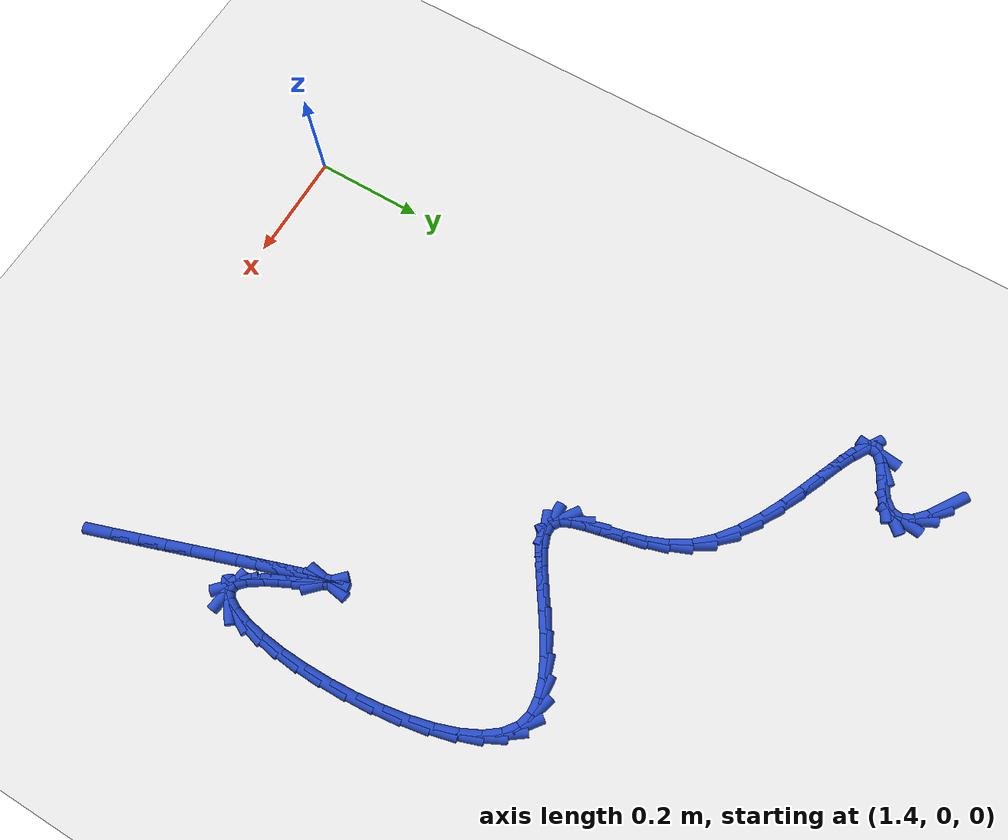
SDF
<sdf version="1.6">
 <world name="default">
  <model name="ground_plane">
   <static>1</static>
   <link name="link">
    <collision name="collision">
     <geometry><plane><normal>0 0 1</normal><size>100 100</size></plane></geometry>
     <surface><friction><ode><mu>100</mu><mu2>50</mu2></ode></friction></surface>
    </collision>
    <visual name="visual">
     <cast_shadows>0</cast_shadows>
     <geometry><plane><normal>0 0 1</normal><size>100 100</size></plane></geometry>
     <material>
      <script><uri>file://media/materials/scripts/gazebo.material</uri><name>Gazebo/WhiteGlow</name></script>
     </material>
    </visual>
   </link>
  </model>
  <model name="line">
   <link name="link_76">
    <pose>1.422353227885713 1.2566066660923347 0.01 0 1.57 -0.5876965544097082</pose>
    <collision name="collision">
     <geometry><cylinder><radius>0.01</radius><length>0.08</length></cylinder></geometry>
    </collision>
    <visual name="visual">
     <material>
      <script><name>Gazebo/Blue</name><uri>file://media/materials/scripts/gazebo.material</uri></script>
     </material>
     <geometry><cylinder><radius>0.01</radius><length>0.08</length></cylinder></geometry>
    </visual>
   </link>
   <link name="link_77">
    <pose>1.4504246015680822 1.2379048239792934 0.01 0 1.57 -0.7770061939495074</pose>
    <collision name="collision">
     <geometry><cylinder><radius>0.01</radius><length>0.08</length></cylinder></geometry>
    </collision>
    <visual name="visual">
     <material>
      <script><name>Gazebo/Blue</name><uri>file://media/materials/scripts/gazebo.material</uri></script>
     </material>
     <geometry><cylinder><radius>0.01</radius><length>0.08</length></cylinder></geometry>
    </visual>
   </link>
   <link name="link_78">
    <pose>1.4701716742054265 1.2184864344200057 0.01 0 1.57 -1.108578124801536</pose>
    <collision name="collision">
     <geometry><cylinder><radius>0.01</radius><length>0.08</length></cylinder></geometry>
    </collision>
    <visual name="visual">
     <material>
      <script><name>Gazebo/Blue</name><uri>file://media/materials/scripts/gazebo.material</uri></script>
     </material>
     <geometry><cylinder><radius>0.01</radius><length>0.08</length></cylinder></geometry>
    </visual>
   </link>
   <link name="link_79">
    <pose>1.4798425528029813 1.1990753609070486 0.01 0 1.57 1.455822723411083</pose>
    <collision name="collision">
     <geometry><cylinder><radius>0.01</radius><length>0.08</length></cylinder></geometry>
    </collision>
    <visual name="visual">
     <material>
      <script><name>Gazebo/Blue</name><uri>file://media/materials/scripts/gazebo.material</uri></script>
     </material>
     <geometry><cylinder><radius>0.01</radius><length>0.08</length></cylinder></geometry>
    </visual>
   </link>
   <link name="link_80">
    <pose>1.477685344365982 1.180395466932998 0.01 0 1.57 0.8311448765689352</pose>
    <collision name="collision">
     <geometry><cylinder><radius>0.01</radius><length>0.08</length></cylinder></geometry>
    </collision>
    <visual name="visual">
     <material>
      <script><name>Gazebo/Blue</name><uri>file://media/materials/scripts/gazebo.material</uri></script>
     </material>
     <geometry><cylinder><radius>0.01</radius><length>0.08</length></cylinder></geometry>
    </visual>
   </link>
   <link name="link_81">
    <pose>1.4619670677281427 1.1631690255038845 0.01 0 1.57 0.5198223311769659</pose>
    <collision name="collision">
     <geometry><cylinder><radius>0.01</radius><length>0.08</length></cylinder></geometry>
    </collision>
    <visual name="visual">
     <material>
      <script><name>Gazebo/Blue</name><uri>file://media/materials/scripts/gazebo.material</uri></script>
     </material>
     <geometry><cylinder><radius>0.01</radius><length>0.08</length></cylinder></geometry>
    </visual>
   </link>
   <link name="link_82">
    <pose>1.4350655518323727 1.1477725901105293 0.01 0 1.57 0.4852488027626833</pose>
    <collision name="collision">
     <geometry><cylinder><radius>0.01</radius><length>0.08</length></cylinder></geometry>
    </collision>
    <visual name="visual">
     <material>
      <script><name>Gazebo/Blue</name><uri>file://media/materials/scripts/gazebo.material</uri></script>
     </material>
     <geometry><cylinder><radius>0.01</radius><length>0.08</length></cylinder></geometry>
    </visual>
   </link>
   <link name="link_83">
    <pose>1.4085807410745395 1.1338071334703974 0.01 0 1.57 0.7222446633518425</pose>
    <collision name="collision">
     <geometry><cylinder><radius>0.01</radius><length>0.08</length></cylinder></geometry>
    </collision>
    <visual name="visual">
     <material>
      <script><name>Gazebo/Blue</name><uri>file://media/materials/scripts/gazebo.material</uri></script>
     </material>
     <geometry><cylinder><radius>0.01</radius><length>0.08</length></cylinder></geometry>
    </visual>
   </link>
   <link name="link_84">
    <pose>1.3937935501843146 1.1207789217176292 0.01 0 1.57 1.459683695080341</pose>
    <collision name="collision">
     <geometry><cylinder><radius>0.01</radius><length>0.08</length></cylinder></geometry>
    </collision>
    <visual name="visual">
     <material>
      <script><name>Gazebo/Blue</name><uri>file://media/materials/scripts/gazebo.material</uri></script>
     </material>
     <geometry><cylinder><radius>0.01</radius><length>0.08</length></cylinder></geometry>
    </visual>
   </link>
   <link name="link_86">
    <pose>1.4024748181979927 1.0958495932321537 0.01 0 1.57 -0.5744484415436149</pose>
    <collision name="collision">
     <geometry><cylinder><radius>0.01</radius><length>0.08</length></cylinder></geometry>
    </collision>
    <visual name="visual">
     <material>
      <script><name>Gazebo/Blue</name><uri>file://media/materials/scripts/gazebo.material</uri></script>
     </material>
     <geometry><cylinder><radius>0.01</radius><length>0.08</length></cylinder></geometry>
    </visual>
   </link>
   <link name="link_87">
    <pose>1.4221050933049213 1.0831436506854435 0.01 0 1.57 -0.45696984943214825</pose>
    <collision name="collision">
     <geometry><cylinder><radius>0.01</radius><length>0.08</length></cylinder></geometry>
    </collision>
    <visual name="visual">
     <material>
      <script><name>Gazebo/Blue</name><uri>file://media/materials/scripts/gazebo.material</uri></script>
     </material>
     <geometry><cylinder><radius>0.01</radius><length>0.08</length></cylinder></geometry>
    </visual>
   </link>
   <link name="link_88">
    <pose>1.4493653086842337 1.0697403355887902 0.01 0 1.57 -0.414436991806656</pose>
    <collision name="collision">
     <geometry><cylinder><radius>0.01</radius><length>0.08</length></cylinder></geometry>
    </collision>
    <visual name="visual">
     <material>
      <script><name>Gazebo/Blue</name><uri>file://media/materials/scripts/gazebo.material</uri></script>
     </material>
     <geometry><cylinder><radius>0.01</radius><length>0.08</length></cylinder></geometry>
    </visual>
   </link>
   <link name="link_89">
    <pose>1.4823330989901733 1.055237257681722 0.01 0 1.57 -0.41071450028318846</pose>
    <collision name="collision">
     <geometry><cylinder><radius>0.01</radius><length>0.08</length></cylinder></geometry>
    </collision>
    <visual name="visual">
     <material>
      <script><name>Gazebo/Blue</name><uri>file://media/materials/scripts/gazebo.material</uri></script>
     </material>
     <geometry><cylinder><radius>0.01</radius><length>0.08</length></cylinder></geometry>
    </visual>
   </link>
   <link name="link_90">
    <pose>1.5190860988769819 1.0392320267037674 0.01 0 1.57 -0.4342651434171428</pose>
    <collision name="collision">
     <geometry><cylinder><radius>0.01</radius><length>0.08</length></cylinder></geometry>
    </collision>
    <visual name="visual">
     <material>
      <script><name>Gazebo/Blue</name><uri>file://media/materials/scripts/gazebo.material</uri></script>
     </material>
     <geometry><cylinder><radius>0.01</radius><length>0.08</length></cylinder></geometry>
    </visual>
   </link>
   <link name="link_91">
    <pose>1.5577019429989036 1.0213222523944554 0.01 0 1.57 -0.48293120679996665</pose>
    <collision name="collision">
     <geometry><cylinder><radius>0.01</radius><length>0.08</length></cylinder></geometry>
    </collision>
    <visual name="visual">
     <material>
      <script><name>Gazebo/Blue</name><uri>file://media/materials/scripts/gazebo.material</uri></script>
     </material>
     <geometry><cylinder><radius>0.01</radius><length>0.08</length></cylinder></geometry>
    </visual>
   </link>
   <link name="link_92">
    <pose>1.5962582660101798 1.0011055444933141 0.01 0 1.57 -0.5599157131242963</pose>
    <collision name="collision">
     <geometry><cylinder><radius>0.01</radius><length>0.08</length></cylinder></geometry>
    </collision>
    <visual name="visual">
     <material>
      <script><name>Gazebo/Blue</name><uri>file://media/materials/scripts/gazebo.material</uri></script>
     </material>
     <geometry><cylinder><radius>0.01</radius><length>0.08</length></cylinder></geometry>
    </visual>
   </link>
   <link name="link_93">
    <pose>1.6328327025650549 0.9781795127398724 0.01 0 1.57 -0.6729016688886992</pose>
    <collision name="collision">
     <geometry><cylinder><radius>0.01</radius><length>0.08</length></cylinder></geometry>
    </collision>
    <visual name="visual">
     <material>
      <script><name>Gazebo/Blue</name><uri>file://media/materials/scripts/gazebo.material</uri></script>
     </material>
     <geometry><cylinder><radius>0.01</radius><length>0.08</length></cylinder></geometry>
    </visual>
   </link>
   <link name="link_94">
    <pose>1.6655028873177717 0.9521417668736586 0.01 0 1.57 -0.8333169371369517</pose>
    <collision name="collision">
     <geometry><cylinder><radius>0.01</radius><length>0.08</length></cylinder></geometry>
    </collision>
    <visual name="visual">
     <material>
      <script><name>Gazebo/Blue</name><uri>file://media/materials/scripts/gazebo.material</uri></script>
     </material>
     <geometry><cylinder><radius>0.01</radius><length>0.08</length></cylinder></geometry>
    </visual>
   </link>
   <link name="link_95">
    <pose>1.6923487884279786 0.9225913531544955 0.01 0 1.57 -1.0248620518485358</pose>
    <collision name="collision">
     <geometry><cylinder><radius>0.01</radius><length>0.08</length></cylinder></geometry>
    </collision>
    <visual name="visual">
     <material>
      <script><name>Gazebo/Blue</name><uri>file://media/materials/scripts/gazebo.material</uri></script>
     </material>
     <geometry><cylinder><radius>0.01</radius><length>0.08</length></cylinder></geometry>
    </visual>
   </link>
   <link name="link_96">
    <pose>1.7123445939727167 0.8896778051286233 0.01 0 1.57 -1.1789046952481763</pose>
    <collision name="collision">
     <geometry><cylinder><radius>0.01</radius><length>0.08</length></cylinder></geometry>
    </collision>
    <visual name="visual">
     <material>
      <script><name>Gazebo/Blue</name><uri>file://media/materials/scripts/gazebo.material</uri></script>
     </material>
     <geometry><cylinder><radius>0.01</radius><length>0.08</length></cylinder></geometry>
    </visual>
   </link>
   <link name="link_97">
    <pose>1.7267048217288916 0.8549298170981211 0.01 0 1.57 -1.283769670488939</pose>
    <collision name="collision">
     <geometry><cylinder><radius>0.01</radius><length>0.08</length></cylinder></geometry>
    </collision>
    <visual name="visual">
     <material>
      <script><name>Gazebo/Blue</name><uri>file://media/materials/scripts/gazebo.material</uri></script>
     </material>
     <geometry><cylinder><radius>0.01</radius><length>0.08</length></cylinder></geometry>
    </visual>
   </link>
   <link name="link_98">
    <pose>1.736989171983244 0.8200885798432426 0.01 0 1.57 -1.3409053410060026</pose>
    <collision name="collision">
     <geometry><cylinder><radius>0.01</radius><length>0.08</length></cylinder></geometry>
    </collision>
    <visual name="visual">
     <material>
      <script><name>Gazebo/Blue</name><uri>file://media/materials/scripts/gazebo.material</uri></script>
     </material>
     <geometry><cylinder><radius>0.01</radius><length>0.08</length></cylinder></geometry>
    </visual>
   </link>
   <link name="link_99">
    <pose>1.7447573450225158 0.7868952841442416 0.01 0 1.57 -1.3461069715757108</pose>
    <collision name="collision">
     <geometry><cylinder><radius>0.01</radius><length>0.08</length></cylinder></geometry>
    </collision>
    <visual name="visual">
     <material>
      <script><name>Gazebo/Blue</name><uri>file://media/materials/scripts/gazebo.material</uri></script>
     </material>
     <geometry><cylinder><radius>0.01</radius><length>0.08</length></cylinder></geometry>
    </visual>
   </link>
   <link name="link_100">
    <pose>1.751569041133449 0.7570911207813708 0.01 0 1.57 -1.278864878275858</pose>
    <collision name="collision">
     <geometry><cylinder><radius>0.01</radius><length>0.08</length></cylinder></geometry>
    </collision>
    <visual name="visual">
     <material>
      <script><name>Gazebo/Blue</name><uri>file://media/materials/scripts/gazebo.material</uri></script>
     </material>
     <geometry><cylinder><radius>0.01</radius><length>0.08</length></cylinder></geometry>
    </visual>
   </link>
   <link name="link_101">
    <pose>1.7589839606027853 0.7324172805348844 0.01 0 1.57 -1.0772044809710524</pose>
    <collision name="collision">
     <geometry><cylinder><radius>0.01</radius><length>0.08</length></cylinder></geometry>
    </collision>
    <visual name="visual">
     <material>
      <script><name>Gazebo/Blue</name><uri>file://media/materials/scripts/gazebo.material</uri></script>
     </material>
     <geometry><cylinder><radius>0.01</radius><length>0.08</length></cylinder></geometry>
    </visual>
   </link>
   <link name="link_102">
    <pose>1.7685618037172657 0.7146149541850348 0.01 0 1.57 -0.6046957880901289</pose>
    <collision name="collision">
     <geometry><cylinder><radius>0.01</radius><length>0.08</length></cylinder></geometry>
    </collision>
    <visual name="visual">
     <material>
      <script><name>Gazebo/Blue</name><uri>file://media/materials/scripts/gazebo.material</uri></script>
     </material>
     <geometry><cylinder><radius>0.01</radius><length>0.08</length></cylinder></geometry>
    </visual>
   </link>
   <link name="link_103">
    <pose>1.7818615197797927 0.7054241495368642 0.01 0 1.57 0.01623542754501137</pose>
    <collision name="collision">
     <geometry><cylinder><radius>0.01</radius><length>0.08</length></cylinder></geometry>
    </collision>
    <visual name="visual">
     <material>
      <script><name>Gazebo/Blue</name><uri>file://media/materials/scripts/gazebo.material</uri></script>
     </material>
     <geometry><cylinder><radius>0.01</radius><length>0.08</length></cylinder></geometry>
    </visual>
   </link>
   <link name="link_104">
    <pose>1.7998910401410004 0.7057168922300736 0.01 0 1.57 0.35504046096444536</pose>
    <collision name="collision">
     <geometry><cylinder><radius>0.01</radius><length>0.08</length></cylinder></geometry>
    </collision>
    <visual name="visual">
     <material>
      <script><name>Gazebo/Blue</name><uri>file://media/materials/scripts/gazebo.material</uri></script>
     </material>
     <geometry><cylinder><radius>0.01</radius><length>0.08</length></cylinder></geometry>
    </visual>
   </link>
   <link name="link_105">
    <pose>1.8221335104516128 0.7139633137591073 0.01 0 1.57 0.5068965094065848</pose>
    <collision name="collision">
     <geometry><cylinder><radius>0.01</radius><length>0.08</length></cylinder></geometry>
    </collision>
    <visual name="visual">
     <material>
      <script><name>Gazebo/Blue</name><uri>file://media/materials/scripts/gazebo.material</uri></script>
     </material>
     <geometry><cylinder><radius>0.01</radius><length>0.08</length></cylinder></geometry>
    </visual>
   </link>
   <link name="link_106">
    <pose>1.8478105192363197 0.7282215319631713 0.01 0 1.57 0.5741786179050887</pose>
    <collision name="collision">
     <geometry><cylinder><radius>0.01</radius><length>0.08</length></cylinder></geometry>
    </collision>
    <visual name="visual">
     <material>
      <script><name>Gazebo/Blue</name><uri>file://media/materials/scripts/gazebo.material</uri></script>
     </material>
     <geometry><cylinder><radius>0.01</radius><length>0.08</length></cylinder></geometry>
    </visual>
   </link>
   <link name="link_107">
    <pose>1.876143655019811 0.7465496646814715 0.01 0 1.57 0.5951999663289629</pose>
    <collision name="collision">
     <geometry><cylinder><radius>0.01</radius><length>0.08</length></cylinder></geometry>
    </collision>
    <visual name="visual">
     <material>
      <script><name>Gazebo/Blue</name><uri>file://media/materials/scripts/gazebo.material</uri></script>
     </material>
     <geometry><cylinder><radius>0.01</radius><length>0.08</length></cylinder></geometry>
    </visual>
   </link>
   <link name="link_108">
    <pose>1.9063545063267753 0.7670058297532136 0.01 0 1.57 0.5828747823404753</pose>
    <collision name="collision">
     <geometry><cylinder><radius>0.01</radius><length>0.08</length></cylinder></geometry>
    </collision>
    <visual name="visual">
     <material>
      <script><name>Gazebo/Blue</name><uri>file://media/materials/scripts/gazebo.material</uri></script>
     </material>
     <geometry><cylinder><radius>0.01</radius><length>0.08</length></cylinder></geometry>
    </visual>
   </link>
   <link name="link_109">
    <pose>1.937664661681904 0.7876481450176045 0.01 0 1.57 0.5382770678473306</pose>
    <collision name="collision">
     <geometry><cylinder><radius>0.01</radius><length>0.08</length></cylinder></geometry>
    </collision>
    <visual name="visual">
     <material>
      <script><name>Gazebo/Blue</name><uri>file://media/materials/scripts/gazebo.material</uri></script>
     </material>
     <geometry><cylinder><radius>0.01</radius><length>0.08</length></cylinder></geometry>
    </visual>
   </link>
   <link name="link_110">
    <pose>1.969295709609884 0.806534728313849 0.01 0 1.57 0.4533870527201815</pose>
    <collision name="collision">
     <geometry><cylinder><radius>0.01</radius><length>0.08</length></cylinder></geometry>
    </collision>
    <visual name="visual">
     <material>
      <script><name>Gazebo/Blue</name><uri>file://media/materials/scripts/gazebo.material</uri></script>
     </material>
     <geometry><cylinder><radius>0.01</radius><length>0.08</length></cylinder></geometry>
    </visual>
   </link>
   <link name="link_111">
    <pose>2.000469238635408 0.821723697481154 0.01 0 1.57 0.30877673950703854</pose>
    <collision name="collision">
     <geometry><cylinder><radius>0.01</radius><length>0.08</length></cylinder></geometry>
    </collision>
    <visual name="visual">
     <material>
      <script><name>Gazebo/Blue</name><uri>file://media/materials/scripts/gazebo.material</uri></script>
     </material>
     <geometry><cylinder><radius>0.01</radius><length>0.08</length></cylinder></geometry>
    </visual>
   </link>
   <link name="link_112">
    <pose>2.030406837283164 0.8312731703587249 0.01 0 1.57 0.07036590039627158</pose>
    <collision name="collision">
     <geometry><cylinder><radius>0.01</radius><length>0.08</length></cylinder></geometry>
    </collision>
    <visual name="visual">
     <material>
      <script><name>Gazebo/Blue</name><uri>file://media/materials/scripts/gazebo.material</uri></script>
     </material>
     <geometry><cylinder><radius>0.01</radius><length>0.08</length></cylinder></geometry>
    </visual>
   </link>
   <link name="link_113">
    <pose>2.0583300940778404 0.833241264785768 0.01 0 1.57 -0.28941591847922793</pose>
    <collision name="collision">
     <geometry><cylinder><radius>0.01</radius><length>0.08</length></cylinder></geometry>
    </collision>
    <visual name="visual">
     <material>
      <script><name>Gazebo/Blue</name><uri>file://media/materials/scripts/gazebo.material</uri></script>
     </material>
     <geometry><cylinder><radius>0.01</radius><length>0.08</length></cylinder></geometry>
    </visual>
   </link>
   <link name="link_114">
    <pose>2.0834781356586065 0.8257527613557116 0.01 0 1.57 -0.6640328255568685</pose>
    <collision name="collision">
     <geometry><cylinder><radius>0.01</radius><length>0.08</length></cylinder></geometry>
    </collision>
    <visual name="visual">
     <material>
      <script><name>Gazebo/Blue</name><uri>file://media/materials/scripts/gazebo.material</uri></script>
     </material>
     <geometry><cylinder><radius>0.01</radius><length>0.08</length></cylinder></geometry>
    </visual>
   </link>
   <link name="link_115">
    <pose>2.1055061545108424 0.8085139159843048 0.01 0 1.57 -0.9340399112657723</pose>
    <collision name="collision">
     <geometry><cylinder><radius>0.01</radius><length>0.08</length></cylinder></geometry>
    </collision>
    <visual name="visual">
     <material>
      <script><name>Gazebo/Blue</name><uri>file://media/materials/scripts/gazebo.material</uri></script>
     </material>
     <geometry><cylinder><radius>0.01</radius><length>0.08</length></cylinder></geometry>
    </visual>
   </link>
   <link name="link_116">
    <pose>2.1244925830638364 0.7828397288108312 0.01 0 1.57 -1.1149770922141544</pose>
    <collision name="collision">
     <geometry><cylinder><radius>0.01</radius><length>0.08</length></cylinder></geometry>
    </collision>
    <visual name="visual">
     <material>
      <script><name>Gazebo/Blue</name><uri>file://media/materials/scripts/gazebo.material</uri></script>
     </material>
     <geometry><cylinder><radius>0.01</radius><length>0.08</length></cylinder></geometry>
    </visual>
   </link>
   <link name="link_117">
    <pose>2.1405348268123507 0.7501173170087191 0.01 0 1.57 -1.2396739288349465</pose>
    <collision name="collision">
     <geometry><cylinder><radius>0.01</radius><length>0.08</length></cylinder></geometry>
    </collision>
    <visual name="visual">
     <material>
      <script><name>Gazebo/Blue</name><uri>file://media/materials/scripts/gazebo.material</uri></script>
     </material>
     <geometry><cylinder><radius>0.01</radius><length>0.08</length></cylinder></geometry>
    </visual>
   </link>
   <link name="link_118">
    <pose>2.153730291251147 0.7117337977513933 0.01 0 1.57 -1.3306396149786666</pose>
    <collision name="collision">
     <geometry><cylinder><radius>0.01</radius><length>0.08</length></cylinder></geometry>
    </collision>
    <visual name="visual">
     <material>
      <script><name>Gazebo/Blue</name><uri>file://media/materials/scripts/gazebo.material</uri></script>
     </material>
     <geometry><cylinder><radius>0.01</radius><length>0.08</length></cylinder></geometry>
    </visual>
   </link>
   <link name="link_119">
    <pose>2.1641763818749875 0.6690762882122816 0.01 0 1.57 -1.401305723493129</pose>
    <collision name="collision">
     <geometry><cylinder><radius>0.01</radius><length>0.08</length></cylinder></geometry>
    </collision>
    <visual name="visual">
     <material>
      <script><name>Gazebo/Blue</name><uri>file://media/materials/scripts/gazebo.material</uri></script>
     </material>
     <geometry><cylinder><radius>0.01</radius><length>0.08</length></cylinder></geometry>
    </visual>
   </link>
   <link name="link_120">
    <pose>2.1719705041786344 0.6235319055648104 0.01 0 1.57 -1.45987805309999</pose>
    <collision name="collision">
     <geometry><cylinder><radius>0.01</radius><length>0.08</length></cylinder></geometry>
    </collision>
    <visual name="visual">
     <material>
      <script><name>Gazebo/Blue</name><uri>file://media/materials/scripts/gazebo.material</uri></script>
     </material>
     <geometry><cylinder><radius>0.01</radius><length>0.08</length></cylinder></geometry>
    </visual>
   </link>
   <link name="link_121">
    <pose>2.1772100636568497 0.5764877669824069 0.01 0 1.57 -1.511861425715576</pose>
    <collision name="collision">
     <geometry><cylinder><radius>0.01</radius><length>0.08</length></cylinder></geometry>
    </collision>
    <visual name="visual">
     <material>
      <script><name>Gazebo/Blue</name><uri>file://media/materials/scripts/gazebo.material</uri></script>
     </material>
     <geometry><cylinder><radius>0.01</radius><length>0.08</length></cylinder></geometry>
    </visual>
   </link>
   <link name="link_122">
    <pose>2.1799924658043968 0.5293309896384977 0.01 0 1.57 -1.561584967129625</pose>
    <collision name="collision">
     <geometry><cylinder><radius>0.01</radius><length>0.08</length></cylinder></geometry>
    </collision>
    <visual name="visual">
     <material>
      <script><name>Gazebo/Blue</name><uri>file://media/materials/scripts/gazebo.material</uri></script>
     </material>
     <geometry><cylinder><radius>0.01</radius><length>0.08</length></cylinder></geometry>
    </visual>
   </link>
   <link name="link_123">
    <pose>2.180415116116036 0.48344869070650953 0.01 0 1.57 1.528256848161813</pose>
    <collision name="collision">
     <geometry><cylinder><radius>0.01</radius><length>0.08</length></cylinder></geometry>
    </collision>
    <visual name="visual">
     <material>
      <script><name>Gazebo/Blue</name><uri>file://media/materials/scripts/gazebo.material</uri></script>
     </material>
     <geometry><cylinder><radius>0.01</radius><length>0.08</length></cylinder></geometry>
    </visual>
   </link>
   <link name="link_124">
    <pose>2.1785754200865295 0.4402279873598697 0.01 0 1.57 1.4689181152453554</pose>
    <collision name="collision">
     <geometry><cylinder><radius>0.01</radius><length>0.08</length></cylinder></geometry>
    </collision>
    <visual name="visual">
     <material>
      <script><name>Gazebo/Blue</name><uri>file://media/materials/scripts/gazebo.material</uri></script>
     </material>
     <geometry><cylinder><radius>0.01</radius><length>0.08</length></cylinder></geometry>
    </visual>
   </link>
   <link name="link_125">
    <pose>2.1745707832106413 0.40105599677200376 0.01 0 1.57 1.3927130554804734</pose>
    <collision name="collision">
     <geometry><cylinder><radius>0.01</radius><length>0.08</length></cylinder></geometry>
    </collision>
    <visual name="visual">
     <material>
      <script><name>Gazebo/Blue</name><uri>file://media/materials/scripts/gazebo.material</uri></script>
     </material>
     <geometry><cylinder><radius>0.01</radius><length>0.08</length></cylinder></geometry>
    </visual>
   </link>
   <link name="link_126">
    <pose>2.168498610983132 0.3673198361163392 0.01 0 1.57 1.2804191910430418</pose>
    <collision name="collision">
     <geometry><cylinder><radius>0.01</radius><length>0.08</length></cylinder></geometry>
    </collision>
    <visual name="visual">
     <material>
      <script><name>Gazebo/Blue</name><uri>file://media/materials/scripts/gazebo.material</uri></script>
     </material>
     <geometry><cylinder><radius>0.01</radius><length>0.08</length></cylinder></geometry>
    </visual>
   </link>
   <link name="link_127">
    <pose>2.1604563088987647 0.34040662256630283 0.01 0 1.57 1.083339353363276</pose>
    <collision name="collision">
     <geometry><cylinder><radius>0.01</radius><length>0.08</length></cylinder></geometry>
    </collision>
    <visual name="visual">
     <material>
      <script><name>Gazebo/Blue</name><uri>file://media/materials/scripts/gazebo.material</uri></script>
     </material>
     <geometry><cylinder><radius>0.01</radius><length>0.08</length></cylinder></geometry>
    </visual>
   </link>
   <link name="link_128">
    <pose>2.1505412824523007 0.32170347329532134 0.01 0 1.57 0.661761071448345</pose>
    <collision name="collision">
     <geometry><cylinder><radius>0.01</radius><length>0.08</length></cylinder></geometry>
    </collision>
    <visual name="visual">
     <material>
      <script><name>Gazebo/Blue</name><uri>file://media/materials/scripts/gazebo.material</uri></script>
     </material>
     <geometry><cylinder><radius>0.01</radius><length>0.08</length></cylinder></geometry>
    </visual>
   </link>
   <link name="link_129">
    <pose>2.138850937138502 0.3125975054768213 0.01 0 1.57 -0.13959293208705031</pose>
    <collision name="collision">
     <geometry><cylinder><radius>0.01</radius><length>0.08</length></cylinder></geometry>
    </collision>
    <visual name="visual">
     <material>
      <script><name>Gazebo/Blue</name><uri>file://media/materials/scripts/gazebo.material</uri></script>
     </material>
     <geometry><cylinder><radius>0.01</radius><length>0.08</length></cylinder></geometry>
    </visual>
   </link>
   <link name="link_130">
    <pose>2.125482678452132 0.3144758362842299 0.01 0 1.57 -0.7595399132683408</pose>
    <collision name="collision">
     <geometry><cylinder><radius>0.01</radius><length>0.08</length></cylinder></geometry>
    </collision>
    <visual name="visual">
     <material>
      <script><name>Gazebo/Blue</name><uri>file://media/materials/scripts/gazebo.material</uri></script>
     </material>
     <geometry><cylinder><radius>0.01</radius><length>0.08</length></cylinder></geometry>
    </visual>
   </link>
   <link name="link_131">
    <pose>2.110545788089745 0.3286595508820621 0.01 0 1.57 -1.0004452672712503</pose>
    <collision name="collision">
     <geometry><cylinder><radius>0.01</radius><length>0.08</length></cylinder></geometry>
    </collision>
    <visual name="visual">
     <material>
      <script><name>Gazebo/Blue</name><uri>file://media/materials/scripts/gazebo.material</uri></script>
     </material>
     <geometry><cylinder><radius>0.01</radius><length>0.08</length></cylinder></geometry>
    </visual>
   </link>
   <link name="link_132">
    <pose>2.094711775581501 0.3533437322025477 0.01 0 1.57 -1.0857282693996975</pose>
    <collision name="collision">
     <geometry><cylinder><radius>0.01</radius><length>0.08</length></cylinder></geometry>
    </collision>
    <visual name="visual">
     <material>
      <script><name>Gazebo/Blue</name><uri>file://media/materials/scripts/gazebo.material</uri></script>
     </material>
     <geometry><cylinder><radius>0.01</radius><length>0.08</length></cylinder></geometry>
    </visual>
   </link>
   <link name="link_133">
    <pose>2.0794466596059236 0.38230597044110987 0.01 0 1.57 -1.1123127577610694</pose>
    <collision name="collision">
     <geometry><cylinder><radius>0.01</radius><length>0.08</length></cylinder></geometry>
    </collision>
    <visual name="visual">
     <material>
      <script><name>Gazebo/Blue</name><uri>file://media/materials/scripts/gazebo.material</uri></script>
     </material>
     <geometry><cylinder><radius>0.01</radius><length>0.08</length></cylinder></geometry>
    </visual>
   </link>
   <link name="link_134">
    <pose>2.0662765331852255 0.4089898304350412 0.01 0 1.57 -1.094616482428617</pose>
    <collision name="collision">
     <geometry><cylinder><radius>0.01</radius><length>0.08</length></cylinder></geometry>
    </collision>
    <visual name="visual">
     <material>
      <script><name>Gazebo/Blue</name><uri>file://media/materials/scripts/gazebo.material</uri></script>
     </material>
     <geometry><cylinder><radius>0.01</radius><length>0.08</length></cylinder></geometry>
    </visual>
   </link>
   <link name="link_135">
    <pose>2.0564083256979893 0.4281229808397165 0.01 0 1.57 -1.0360296644348757</pose>
    <collision name="collision">
     <geometry><cylinder><radius>0.01</radius><length>0.08</length></cylinder></geometry>
    </collision>
    <visual name="visual">
     <material>
      <script><name>Gazebo/Blue</name><uri>file://media/materials/scripts/gazebo.material</uri></script>
     </material>
     <geometry><cylinder><radius>0.01</radius><length>0.08</length></cylinder></geometry>
    </visual>
   </link>
   <link name="link_136">
    <pose>2.049876563478682 0.43915006624223313 0.01 0 1.57 -0.7880962847408921</pose>
    <collision name="collision">
     <geometry><cylinder><radius>0.01</radius><length>0.08</length></cylinder></geometry>
    </collision>
    <visual name="visual">
     <material>
      <script><name>Gazebo/Blue</name><uri>file://media/materials/scripts/gazebo.material</uri></script>
     </material>
     <geometry><cylinder><radius>0.01</radius><length>0.08</length></cylinder></geometry>
    </visual>
   </link>
   <link name="link_137">
    <pose>2.046446638564623 0.44259854998252685 0.01 0 1.57 1.4158589812783353</pose>
    <collision name="collision">
     <geometry><cylinder><radius>0.01</radius><length>0.08</length></cylinder></geometry>
    </collision>
    <visual name="visual">
     <material>
      <script><name>Gazebo/Blue</name><uri>file://media/materials/scripts/gazebo.material</uri></script>
     </material>
     <geometry><cylinder><radius>0.01</radius><length>0.08</length></cylinder></geometry>
    </visual>
   </link>
   <link name="link_138">
    <pose>2.0458839429931284 0.43899589540053363 0.01 0 1.57 -1.369163737081264</pose>
    <collision name="collision">
     <geometry><cylinder><radius>0.01</radius><length>0.08</length></cylinder></geometry>
    </collision>
    <visual name="visual">
     <material>
      <script><name>Gazebo/Blue</name><uri>file://media/materials/scripts/gazebo.material</uri></script>
     </material>
     <geometry><cylinder><radius>0.01</radius><length>0.08</length></cylinder></geometry>
    </visual>
   </link>
   <link name="link_139">
    <pose>2.047953868801516 0.42886956583618907 0.01 0 1.57 -1.3004567479981133</pose>
    <collision name="collision">
     <geometry><cylinder><radius>0.01</radius><length>0.08</length></cylinder></geometry>
    </collision>
    <visual name="visual">
     <material>
      <script><name>Gazebo/Blue</name><uri>file://media/materials/scripts/gazebo.material</uri></script>
     </material>
     <geometry><cylinder><radius>0.01</radius><length>0.08</length></cylinder></geometry>
    </visual>
   </link>
   <link name="link_140">
    <pose>2.0524218080271046 0.4127470246294296 0.01 0 1.57 -1.2728106469979876</pose>
    <collision name="collision">
     <geometry><cylinder><radius>0.01</radius><length>0.08</length></cylinder></geometry>
    </collision>
    <visual name="visual">
     <material>
      <script><name>Gazebo/Blue</name><uri>file://media/materials/scripts/gazebo.material</uri></script>
     </material>
     <geometry><cylinder><radius>0.01</radius><length>0.08</length></cylinder></geometry>
    </visual>
   </link>
   <link name="link_141">
    <pose>2.05905315270721 0.3911557351201902 0.01 0 1.57 -1.2587116304782469</pose>
    <collision name="collision">
     <geometry><cylinder><radius>0.01</radius><length>0.08</length></cylinder></geometry>
    </collision>
    <visual name="visual">
     <material>
      <script><name>Gazebo/Blue</name><uri>file://media/materials/scripts/gazebo.material</uri></script>
     </material>
     <geometry><cylinder><radius>0.01</radius><length>0.08</length></cylinder></geometry>
    </visual>
   </link>
   <link name="link_142">
    <pose>2.067613294879152 0.3646231606484069 0.01 0 1.57 -1.25082474742659</pose>
    <collision name="collision">
     <geometry><cylinder><radius>0.01</radius><length>0.08</length></cylinder></geometry>
    </collision>
    <visual name="visual">
     <material>
      <script><name>Gazebo/Blue</name><uri>file://media/materials/scripts/gazebo.material</uri></script>
     </material>
     <geometry><cylinder><radius>0.01</radius><length>0.08</length></cylinder></geometry>
    </visual>
   </link>
   <link name="link_143">
    <pose>2.0778676265802463 0.3336767645540157 0.01 0 1.57 -1.2463869744382232</pose>
    <collision name="collision">
     <geometry><cylinder><radius>0.01</radius><length>0.08</length></cylinder></geometry>
    </collision>
    <visual name="visual">
     <material>
      <script><name>Gazebo/Blue</name><uri>file://media/materials/scripts/gazebo.material</uri></script>
     </material>
     <geometry><cylinder><radius>0.01</radius><length>0.08</length></cylinder></geometry>
    </visual>
   </link>
   <link name="link_144">
    <pose>2.089581539847812 0.2988440101769521 0.01 0 1.57 -1.244144294139908</pose>
    <collision name="collision">
     <geometry><cylinder><radius>0.01</radius><length>0.08</length></cylinder></geometry>
    </collision>
    <visual name="visual">
     <material>
      <script><name>Gazebo/Blue</name><uri>file://media/materials/scripts/gazebo.material</uri></script>
     </material>
     <geometry><cylinder><radius>0.01</radius><length>0.08</length></cylinder></geometry>
    </visual>
   </link>
   <link name="link_145">
    <pose>2.102520426719166 0.2606523608571524 0.01 0 1.57 -1.2434641879270696</pose>
    <collision name="collision">
     <geometry><cylinder><radius>0.01</radius><length>0.08</length></cylinder></geometry>
    </collision>
    <visual name="visual">
     <material>
      <script><name>Gazebo/Blue</name><uri>file://media/materials/scripts/gazebo.material</uri></script>
     </material>
     <geometry><cylinder><radius>0.01</radius><length>0.08</length></cylinder></geometry>
    </visual>
   </link>
   <link name="link_146">
    <pose>2.1164496792316267 0.21962927993455195 0.01 0 1.57 -1.2440136677661227</pose>
    <collision name="collision">
     <geometry><cylinder><radius>0.01</radius><length>0.08</length></cylinder></geometry>
    </collision>
    <visual name="visual">
     <material>
      <script><name>Gazebo/Blue</name><uri>file://media/materials/scripts/gazebo.material</uri></script>
     </material>
     <geometry><cylinder><radius>0.01</radius><length>0.08</length></cylinder></geometry>
    </visual>
   </link>
   <link name="link_147">
    <pose>2.131134689422512 0.1763022307490868 0.01 0 1.57 -1.2456247354999401</pose>
    <collision name="collision">
     <geometry><cylinder><radius>0.01</radius><length>0.08</length></cylinder></geometry>
    </collision>
    <visual name="visual">
     <material>
      <script><name>Gazebo/Blue</name><uri>file://media/materials/scripts/gazebo.material</uri></script>
     </material>
     <geometry><cylinder><radius>0.01</radius><length>0.08</length></cylinder></geometry>
    </visual>
   </link>
   <link name="link_148">
    <pose>2.1463408493291376 0.1311986766406926 0.01 0 1.57 -1.248233680109795</pose>
    <collision name="collision">
     <geometry><cylinder><radius>0.01</radius><length>0.08</length></cylinder></geometry>
    </collision>
    <visual name="visual">
     <material>
      <script><name>Gazebo/Blue</name><uri>file://media/materials/scripts/gazebo.material</uri></script>
     </material>
     <geometry><cylinder><radius>0.01</radius><length>0.08</length></cylinder></geometry>
    </visual>
   </link>
   <link name="link_149">
    <pose>2.161833550988823 0.08484608094930528 0.01 0 1.57 -1.2518541822366467</pose>
    <collision name="collision">
     <geometry><cylinder><radius>0.01</radius><length>0.08</length></cylinder></geometry>
    </collision>
    <visual name="visual">
     <material>
      <script><name>Gazebo/Blue</name><uri>file://media/materials/scripts/gazebo.material</uri></script>
     </material>
     <geometry><cylinder><radius>0.01</radius><length>0.08</length></cylinder></geometry>
    </visual>
   </link>
  </model>
 </world>
</sdf>
